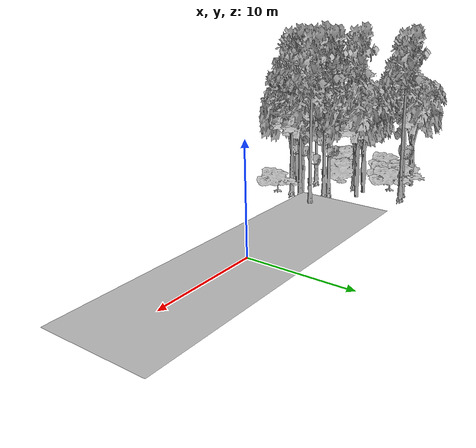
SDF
<sdf version="1.7">
 <world name="default">
  <model name="ground_plane">
   <static>1</static>
   <link name="link">
    <collision name="collision">
     <pose>-50 0 0 0 -0 0</pose>
     <geometry><plane><normal>0 0 1</normal><size>100 100</size></plane></geometry>
     <surface><contact><ode><min_depth>0.01</min_depth><max_vel>0</max_vel></ode></contact></surface>
    </collision>
    <visual name="grass">
     <cast_shadows>0</cast_shadows>
     <geometry>
      <mesh>
       <scale>0.5814285714285714 0.18142857142857144 0.1</scale>
       <uri>file://grass_plane/meshes/grass_plane.dae</uri>
      </mesh>
     </geometry>
    </visual>
   </link>
  </model>
  <model name="Tree 9">
   <static>1</static>
   <pose>-19.254728085528576 0.3117061997227779 0 1.57079 -0 0</pose>
   <link name="link">
    <collision name="collision">
     <geometry><mesh><scale>3.5 5 3.5</scale><uri>model://tree_2/meshes/tree_2.obj</uri></mesh></geometry>
    </collision>
    <visual name="visual">
     <geometry><mesh><scale>3.5 5 3.5</scale><uri>model://tree_2/meshes/tree_2.obj</uri></mesh></geometry>
    </visual>
   </link>
  </model>
  <model name="Tree 20">
   <static>1</static>
   <pose>-19.827371772163044 -5.894363114808941 0 1.57079 -0 0</pose>
   <link name="link">
    <collision name="collision">
     <geometry><mesh><scale>3.5 5 3.5</scale><uri>model://tree_9/meshes/tree_9.obj</uri></mesh></geometry>
    </collision>
    <visual name="visual">
     <geometry><mesh><scale>3.5 5 3.5</scale><uri>model://tree_9/meshes/tree_9.obj</uri></mesh></geometry>
    </visual>
   </link>
  </model>
  <model name="Tree 53">
   <static>1</static>
   <pose>-17.664537626048087 -6.967088155963076 0 1.57079 -0 0</pose>
   <link name="link">
    <collision name="collision">
     <geometry><mesh><scale>3.5 5 3.5</scale><uri>model://tree_2/meshes/tree_2.obj</uri></mesh></geometry>
    </collision>
    <visual name="visual">
     <geometry><mesh><scale>3.5 5 3.5</scale><uri>model://tree_2/meshes/tree_2.obj</uri></mesh></geometry>
    </visual>
   </link>
  </model>
  <model name="Tree 66">
   <static>1</static>
   <pose>-16.48391731483963 -2.8516105511017447 0 1.57079 -0 0</pose>
   <link name="link">
    <collision name="collision">
     <geometry><mesh><scale>3.5 5 3.5</scale><uri>model://tree_9/meshes/tree_9.obj</uri></mesh></geometry>
    </collision>
    <visual name="visual">
     <geometry><mesh><scale>3.5 5 3.5</scale><uri>model://tree_9/meshes/tree_9.obj</uri></mesh></geometry>
    </visual>
   </link>
  </model>
  <model name="Tree 124">
   <static>1</static>
   <pose>-17.11439797778724 -2.6732983524604226 0 1.57079 -0 0</pose>
   <link name="link">
    <collision name="collision">
     <geometry><mesh><scale>3.5 5 3.5</scale><uri>model://tree_9/meshes/tree_9.obj</uri></mesh></geometry>
    </collision>
    <visual name="visual">
     <geometry><mesh><scale>3.5 5 3.5</scale><uri>model://tree_9/meshes/tree_9.obj</uri></mesh></geometry>
    </visual>
   </link>
  </model>
  <model name="Tree 163">
   <static>1</static>
   <pose>-23.890283403146512 3.656524585853436 0 1.57079 -0 0</pose>
   <link name="link">
    <collision name="collision">
     <geometry><mesh><scale>3.5 5 3.5</scale><uri>model://tree_2/meshes/tree_2.obj</uri></mesh></geometry>
    </collision>
    <visual name="visual">
     <geometry><mesh><scale>3.5 5 3.5</scale><uri>model://tree_2/meshes/tree_2.obj</uri></mesh></geometry>
    </visual>
   </link>
  </model>
  <model name="Tree 173">
   <static>1</static>
   <pose>-21.38979172372415 2.323781086374492 0 1.57079 -0 0</pose>
   <link name="link">
    <collision name="collision">
     <geometry><mesh><scale>4 2.5 4</scale><uri>model://tree_1/meshes/tree_1.obj</uri></mesh></geometry>
    </collision>
    <visual name="visual">
     <geometry><mesh><scale>4 2.5 4</scale><uri>model://tree_1/meshes/tree_1.obj</uri></mesh></geometry>
    </visual>
   </link>
  </model>
  <model name="Tree 205">
   <static>1</static>
   <pose>-17.670670163162818 0.37865927198769 0 1.57079 -0 0</pose>
   <link name="link">
    <collision name="collision">
     <geometry><mesh><scale>3.5 5 3.5</scale><uri>model://tree_2/meshes/tree_2.obj</uri></mesh></geometry>
    </collision>
    <visual name="visual">
     <geometry><mesh><scale>3.5 5 3.5</scale><uri>model://tree_2/meshes/tree_2.obj</uri></mesh></geometry>
    </visual>
   </link>
  </model>
  <model name="Tree 215">
   <static>1</static>
   <pose>-15.37407047218089 -5.085395943359336 0 1.57079 -0 0</pose>
   <link name="link">
    <collision name="collision">
     <geometry><mesh><scale>3.5 5 3.5</scale><uri>model://tree_9/meshes/tree_9.obj</uri></mesh></geometry>
    </collision>
    <visual name="visual">
     <geometry><mesh><scale>3.5 5 3.5</scale><uri>model://tree_9/meshes/tree_9.obj</uri></mesh></geometry>
    </visual>
   </link>
  </model>
  <model name="Tree 229">
   <static>1</static>
   <pose>-14.575380982845772 -7.394949132032237 0 1.57079 -0 0</pose>
   <link name="link">
    <collision name="collision">
     <geometry><mesh><scale>4 2.5 4</scale><uri>model://tree_1/meshes/tree_1.obj</uri></mesh></geometry>
    </collision>
    <visual name="visual">
     <geometry><mesh><scale>4 2.5 4</scale><uri>model://tree_1/meshes/tree_1.obj</uri></mesh></geometry>
    </visual>
   </link>
  </model>
  <model name="Tree 278">
   <static>1</static>
   <pose>-15.926965442965695 -5.14218142637956 0 1.57079 -0 0</pose>
   <link name="link">
    <collision name="collision">
     <geometry><mesh><scale>3.5 5 3.5</scale><uri>model://tree_2/meshes/tree_2.obj</uri></mesh></geometry>
    </collision>
    <visual name="visual">
     <geometry><mesh><scale>3.5 5 3.5</scale><uri>model://tree_2/meshes/tree_2.obj</uri></mesh></geometry>
    </visual>
   </link>
  </model>
  <model name="Tree 287">
   <static>1</static>
   <pose>-25.74651247130686 -5.67896730126194 0 1.57079 -0 0</pose>
   <link name="link">
    <collision name="collision">
     <geometry><mesh><scale>3 2 3</scale><uri>model://tree_3/meshes/tree_3.obj</uri></mesh></geometry>
    </collision>
    <visual name="visual">
     <geometry><mesh><scale>3 2 3</scale><uri>model://tree_3/meshes/tree_3.obj</uri></mesh></geometry>
    </visual>
   </link>
  </model>
  <model name="Tree 305">
   <static>1</static>
   <pose>-23.034023333634973 1.1994238117250973 0 1.57079 -0 0</pose>
   <link name="link">
    <collision name="collision">
     <geometry><mesh><scale>4 2.5 4</scale><uri>model://tree_1/meshes/tree_1.obj</uri></mesh></geometry>
    </collision>
    <visual name="visual">
     <geometry><mesh><scale>4 2.5 4</scale><uri>model://tree_1/meshes/tree_1.obj</uri></mesh></geometry>
    </visual>
   </link>
  </model>
  <model name="Tree 337">
   <static>1</static>
   <pose>-13.462511342191071 -2.630498913981885 0 1.57079 -0 0</pose>
   <link name="link">
    <collision name="collision">
     <geometry><mesh><scale>3.5 5 3.5</scale><uri>model://tree_9/meshes/tree_9.obj</uri></mesh></geometry>
    </collision>
    <visual name="visual">
     <geometry><mesh><scale>3.5 5 3.5</scale><uri>model://tree_9/meshes/tree_9.obj</uri></mesh></geometry>
    </visual>
   </link>
  </model>
  <model name="Tree 373">
   <static>1</static>
   <pose>-20.880667359962764 -1.7104378334664503 0 1.57079 -0 0</pose>
   <link name="link">
    <collision name="collision">
     <geometry><mesh><scale>3.5 5 3.5</scale><uri>model://tree_9/meshes/tree_9.obj</uri></mesh></geometry>
    </collision>
    <visual name="visual">
     <geometry><mesh><scale>3.5 5 3.5</scale><uri>model://tree_9/meshes/tree_9.obj</uri></mesh></geometry>
    </visual>
   </link>
  </model>
  <model name="Tree 390">
   <static>1</static>
   <pose>-16.334295029290004 -6.67479706749074 0 1.57079 -0 0</pose>
   <link name="link">
    <collision name="collision">
     <geometry><mesh><scale>3.5 5 3.5</scale><uri>model://tree_2/meshes/tree_2.obj</uri></mesh></geometry>
    </collision>
    <visual name="visual">
     <geometry><mesh><scale>3.5 5 3.5</scale><uri>model://tree_2/meshes/tree_2.obj</uri></mesh></geometry>
    </visual>
   </link>
  </model>
  <model name="Tree 391">
   <static>1</static>
   <pose>-20.193603424516173 4.107144099843008 0 1.57079 -0 0</pose>
   <link name="link">
    <collision name="collision">
     <geometry><mesh><scale>3.5 5 3.5</scale><uri>model://tree_9/meshes/tree_9.obj</uri></mesh></geometry>
    </collision>
    <visual name="visual">
     <geometry><mesh><scale>3.5 5 3.5</scale><uri>model://tree_9/meshes/tree_9.obj</uri></mesh></geometry>
    </visual>
   </link>
  </model>
  <model name="Tree 393">
   <static>1</static>
   <pose>-21.129761004835384 -3.5323043068568865 0 1.57079 -0 0</pose>
   <link name="link">
    <collision name="collision">
     <geometry><mesh><scale>3 2 3</scale><uri>model://tree_3/meshes/tree_3.obj</uri></mesh></geometry>
    </collision>
    <visual name="visual">
     <geometry><mesh><scale>3 2 3</scale><uri>model://tree_3/meshes/tree_3.obj</uri></mesh></geometry>
    </visual>
   </link>
  </model>
  <model name="Tree 413">
   <static>1</static>
   <pose>-26.271448128522184 -0.2974018895761823 0 1.57079 -0 0</pose>
   <link name="link">
    <collision name="collision">
     <geometry><mesh><scale>4 2.5 4</scale><uri>model://tree_1/meshes/tree_1.obj</uri></mesh></geometry>
    </collision>
    <visual name="visual">
     <geometry><mesh><scale>4 2.5 4</scale><uri>model://tree_1/meshes/tree_1.obj</uri></mesh></geometry>
    </visual>
   </link>
  </model>
  <model name="Tree 425">
   <static>1</static>
   <pose>-21.559818032969353 3.6953757830516913 0 1.57079 -0 0</pose>
   <link name="link">
    <collision name="collision">
     <geometry><mesh><scale>3.5 5 3.5</scale><uri>model://tree_9/meshes/tree_9.obj</uri></mesh></geometry>
    </collision>
    <visual name="visual">
     <geometry><mesh><scale>3.5 5 3.5</scale><uri>model://tree_9/meshes/tree_9.obj</uri></mesh></geometry>
    </visual>
   </link>
  </model>
  <model name="Tree 500">
   <static>1</static>
   <pose>-23.34760712644066 2.809141197094405 0 1.57079 -0 0</pose>
   <link name="link">
    <collision name="collision">
     <geometry><mesh><scale>4 2.5 4</scale><uri>model://tree_1/meshes/tree_1.obj</uri></mesh></geometry>
    </collision>
    <visual name="visual">
     <geometry><mesh><scale>4 2.5 4</scale><uri>model://tree_1/meshes/tree_1.obj</uri></mesh></geometry>
    </visual>
   </link>
  </model>
  <model name="Tree 528">
   <static>1</static>
   <pose>-24.571745524773224 2.2306224178550274 0 1.57079 -0 0</pose>
   <link name="link">
    <collision name="collision">
     <geometry><mesh><scale>3 2 3</scale><uri>model://tree_3/meshes/tree_3.obj</uri></mesh></geometry>
    </collision>
    <visual name="visual">
     <geometry><mesh><scale>3 2 3</scale><uri>model://tree_3/meshes/tree_3.obj</uri></mesh></geometry>
    </visual>
   </link>
  </model>
  <model name="Tree 537">
   <static>1</static>
   <pose>-15.52061006566187 -6.232071264609058 0 1.57079 -0 0</pose>
   <link name="link">
    <collision name="collision">
     <geometry><mesh><scale>3.5 5 3.5</scale><uri>model://tree_9/meshes/tree_9.obj</uri></mesh></geometry>
    </collision>
    <visual name="visual">
     <geometry><mesh><scale>3.5 5 3.5</scale><uri>model://tree_9/meshes/tree_9.obj</uri></mesh></geometry>
    </visual>
   </link>
  </model>
 </world>
</sdf>
